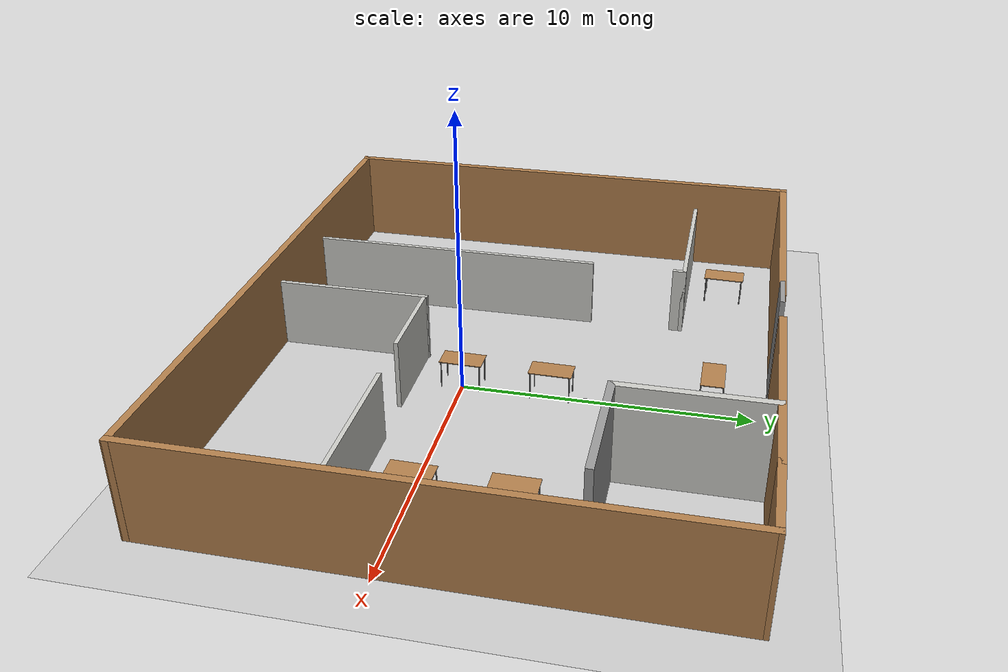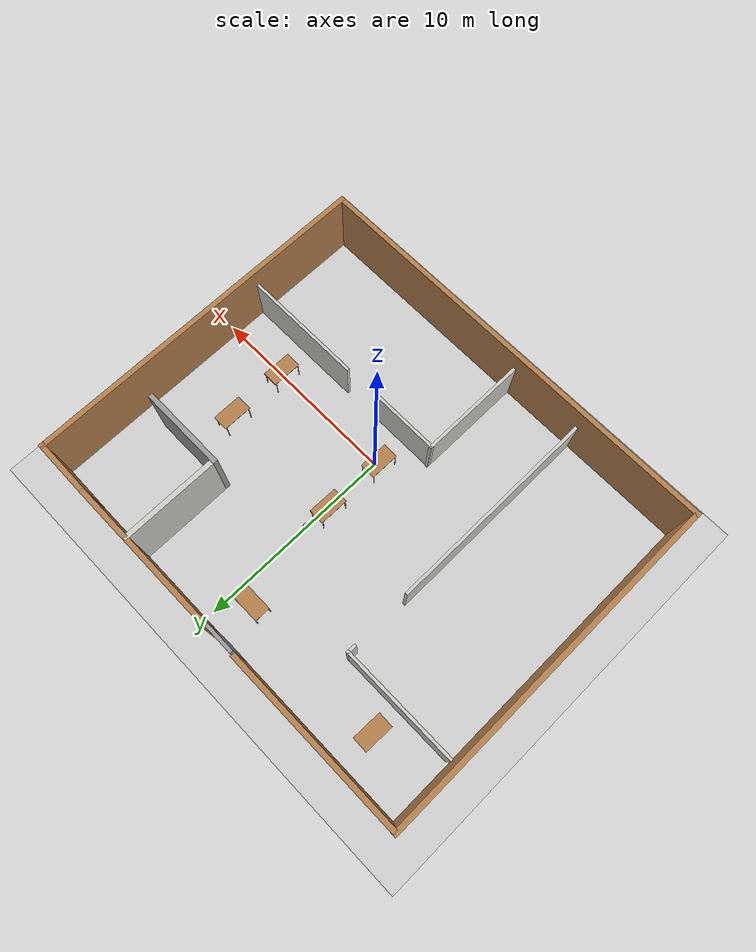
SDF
<sdf version="1.6">
 <world name="default">
  <light name="sun" type="directional">
   <pose>0 0 10 0 -0 0</pose>
   <diffuse>0.8 0.8 0.8 1</diffuse>
   <specular>0.2 0.2 0.2 1</specular>
   <attenuation>
    <range>1000</range>
    <constant>0.9</constant>
    <linear>0.01</linear>
    <quadratic>0.001</quadratic>
   </attenuation>
   <direction>-0.5 0.1 -0.9</direction>
  </light>
  <model name="ground_plane">
   <static>1</static>
   <link name="link">
    <collision name="collision">
     <geometry><plane><normal>0 0 1</normal><size>100 100</size></plane></geometry>
     <surface>
      <contact><collide_bitmask>65535</collide_bitmask></contact>
      <friction><ode><mu>100</mu><mu2>50</mu2></ode></friction>
     </surface>
    </collision>
    <visual name="visual">
     <cast_shadows>0</cast_shadows>
     <geometry><plane><normal>0 0 1</normal><size>100 100</size></plane></geometry>
     <material>
      <script><uri>file://media/materials/scripts/gazebo.material</uri><name>Gazebo/Grey</name></script>
     </material>
    </visual>
   </link>
  </model>
  <gravity>0 0 -9.8</gravity>
  <magnetic_field>6e-06 2.3e-05 -4.2e-05</magnetic_field>
  <atmosphere type="adiabatic"/>
  <physics name="default_physics" default="0" type="ode">
   <max_step_size>0.001</max_step_size>
   <real_time_factor>1</real_time_factor>
   <real_time_update_rate>1000</real_time_update_rate>
  </physics>
  <scene><ambient>0.4 0.4 0.4 1</ambient><background>0.7 0.7 0.7 1</background><shadows>1</shadows></scene>
  <audio><device>default</device></audio>
  <spherical_coordinates>
   <surface_model>EARTH_WGS84</surface_model>
   <latitude_deg>0</latitude_deg>
   <longitude_deg>0</longitude_deg>
   <elevation>0</elevation>
   <heading_deg>0</heading_deg>
  </spherical_coordinates>
  <model name="Building">
   <pose>-1.05841 1.60982 0 0 -0 0</pose>
   <link name="Door_0">
    <collision name="Door_0_Collision">
     <geometry><box><size>1.5 0.17 4</size></box></geometry>
     <pose>0 0 2 0 -0 0</pose>
    </collision>
    <visual name="Door_0_Visual">
     <pose>0 0 2 0 -0 0</pose>
     <geometry><box><size>1.5 0.17 4</size></box></geometry>
     <material>
      <script><uri>file://media/materials/scripts/gazebo.material</uri><name>Gazebo/Grey</name></script>
     </material>
    </visual>
    <pose>-0.815483 8.87818 0 0 -0 0</pose>
   </link>
   <link name="Wall_1">
    <collision name="Wall_1_Collision">
     <geometry><box><size>9.25 0.25 3.5</size></box></geometry>
     <pose>0 0 1.75 0 -0 0</pose>
    </collision>
    <visual name="Wall_1_Visual">
     <pose>0 0 1.75 0 -0 0</pose>
     <geometry><box><size>9.25 0.25 3.5</size></box></geometry>
     <material>
      <script><uri>file://media/materials/scripts/gazebo.material</uri><name>Gazebo/Wood</name></script>
      <ambient>1 1 1 1</ambient>
     </material>
     <meta><layer>0</layer></meta>
    </visual>
    <pose>-6.14568 8.92929 0 0 -0 0</pose>
   </link>
   <link name="Wall_13">
    <collision name="Wall_13_Collision">
     <geometry><box><size>0.15 0.15 2.5</size></box></geometry>
     <pose>0 0 1.25 0 -0 0</pose>
    </collision>
    <visual name="Wall_13_Visual">
     <pose>0 0 1.25 0 -0 0</pose>
     <geometry><box><size>0.15 0.15 2.5</size></box></geometry>
     <material>
      <script><uri>file://media/materials/scripts/gazebo.material</uri><name>Gazebo/Grey</name></script>
      <ambient>1 1 1 1</ambient>
     </material>
     <meta><layer>0</layer></meta>
    </visual>
    <pose>-10.7159 8.91724 0 0 -0 0</pose>
   </link>
   <link name="Wall_14">
    <collision name="Wall_14_Collision">
     <geometry><box><size>0.15 0.15 2.5</size></box></geometry>
     <pose>0 0 1.25 0 -0 0</pose>
    </collision>
    <visual name="Wall_14_Visual">
     <pose>0 0 1.25 0 -0 0</pose>
     <geometry><box><size>0.15 0.15 2.5</size></box></geometry>
     <material>
      <script><uri>file://media/materials/scripts/gazebo.material</uri><name>Gazebo/Grey</name></script>
      <ambient>1 1 1 1</ambient>
     </material>
     <meta><layer>0</layer></meta>
    </visual>
    <pose>-10.7159 8.91724 0 0 -0 0</pose>
   </link>
   <link name="Wall_17">
    <collision name="Wall_17_Collision">
     <geometry><box><size>5.10048 0.25 3.5</size></box></geometry>
     <pose>0 0 1.75 0 -0 0</pose>
    </collision>
    <visual name="Wall_17_Visual">
     <pose>0 0 1.75 0 -0 0</pose>
     <geometry><box><size>5.10048 0.25 3.5</size></box></geometry>
     <material>
      <script><uri>file://media/materials/scripts/gazebo.material</uri><name>Gazebo/CeilingTiled</name></script>
      <ambient>0 0 0 1</ambient>
     </material>
     <meta><layer>0</layer></meta>
    </visual>
    <pose>5.1471 6.47424 0 0 -0 -1.5708</pose>
   </link>
   <link name="Wall_18">
    <collision name="Wall_18_Collision">
     <geometry><box><size>4.35047 0.25 3.5</size></box></geometry>
     <pose>0 0 1.75 0 -0 0</pose>
    </collision>
    <visual name="Wall_18_Visual">
     <pose>0 0 1.75 0 -0 0</pose>
     <geometry><box><size>4.35047 0.25 3.5</size></box></geometry>
     <material>
      <script><uri>file://media/materials/scripts/gazebo.material</uri><name>Gazebo/Grey</name></script>
      <ambient>0 0 0 1</ambient>
     </material>
     <meta><layer>0</layer></meta>
    </visual>
    <pose>7.1971 4.04924 0 0 -0 0</pose>
   </link>
   <link name="Wall_3">
    <collision name="Wall_3_Collision">
     <geometry><box><size>8.09972 0.25 3.5</size></box></geometry>
     <pose>0 0 1.75 0 -0 0</pose>
    </collision>
    <visual name="Wall_3_Visual">
     <pose>0 0 1.75 0 -0 0</pose>
     <geometry><box><size>8.09972 0.25 3.5</size></box></geometry>
     <material>
      <script><uri>file://media/materials/scripts/gazebo.material</uri><name>Gazebo/Wood</name></script>
      <ambient>1 1 1 1</ambient>
     </material>
     <meta><layer>0</layer></meta>
    </visual>
    <pose>4.0241 8.94424 0 0 -0 0</pose>
   </link>
   <link name="Wall_4">
    <collision name="Wall_4_Collision">
     <geometry><box><size>3.10115 0.25 3.5</size></box></geometry>
     <pose>0 0 1.75 0 -0 0</pose>
    </collision>
    <visual name="Wall_4_Visual">
     <pose>0 0 1.75 0 -0 0</pose>
     <geometry><box><size>3.10115 0.25 3.5</size></box></geometry>
     <material>
      <script><uri>file://media/materials/scripts/gazebo.material</uri><name>Gazebo/Wood</name></script>
      <ambient>1 1 1 1</ambient>
     </material>
     <meta><layer>0</layer></meta>
    </visual>
    <pose>9.3741 8.92424 0 0 -0 -0.014034</pose>
   </link>
   <link name="Wall_5">
    <collision name="Wall_5_Collision">
     <geometry><box><size>18.1004 0.25 3.5</size></box></geometry>
     <pose>0 0 1.75 0 -0 0</pose>
    </collision>
    <visual name="Wall_5_Visual">
     <pose>0 0 1.75 0 -0 0</pose>
     <geometry><box><size>18.1004 0.25 3.5</size></box></geometry>
     <material>
      <script><uri>file://media/materials/scripts/gazebo.material</uri><name>Gazebo/Wood</name></script>
      <ambient>1 1 1 1</ambient>
     </material>
     <meta><layer>0</layer></meta>
    </visual>
    <pose>10.7991 -0.020758 0 0 -0 -1.5708</pose>
   </link>
   <link name="Wall_6">
    <collision name="Wall_6_Collision">
     <geometry><box><size>21.8503 0.25 3.5</size></box></geometry>
     <pose>0 0 1.75 0 -0 0</pose>
    </collision>
    <visual name="Wall_6_Visual">
     <pose>0 0 1.75 0 -0 0</pose>
     <geometry><box><size>21.8503 0.25 3.5</size></box></geometry>
     <material>
      <script><uri>file://media/materials/scripts/gazebo.material</uri><name>Gazebo/Wood</name></script>
      <ambient>1 1 1 1</ambient>
     </material>
     <meta><layer>0</layer></meta>
    </visual>
    <pose>-0.000902 -8.92576 0 0 -0 3.13974</pose>
   </link>
   <link name="Wall_7">
    <collision name="Wall_7_Collision">
     <geometry><box><size>18.1 0.25 3.5</size></box></geometry>
     <pose>0 0 1.75 0 -0 0</pose>
    </collision>
    <visual name="Wall_7_Visual">
     <pose>0 0 1.75 0 -0 0</pose>
     <geometry><box><size>18.1 0.25 3.5</size></box></geometry>
     <material>
      <script><uri>file://media/materials/scripts/gazebo.material</uri><name>Gazebo/Wood</name></script>
      <ambient>1 1 1 1</ambient>
     </material>
     <meta><layer>0</layer></meta>
    </visual>
    <pose>-10.8009 0.019242 0 0 -0 1.5708</pose>
   </link>
   <link name="Window_0">
    <collision name="Window_0_Collision">
     <geometry><box><size>0.8 0.17 0.8</size></box></geometry>
     <pose>0 0 0.4 0 -0 0</pose>
    </collision>
    <visual name="Window_0_Visual">
     <pose>0 0 0.4 0 -0 0</pose>
     <geometry><box><size>0.8 0.17 0.8</size></box></geometry>
     <material>
      <script><uri>file://media/materials/scripts/gazebo.material</uri><name>Gazebo/Grey</name></script>
     </material>
    </visual>
    <pose>8.40754 8.94648 0.5 0 -0 0</pose>
   </link>
   <static>1</static>
  </model>
  <model name="BuildingAdd">
   <pose>-0.92237 -0.11893 0 0 -0 0</pose>
   <link name="Wall_0">
    <collision name="Wall_0_Collision">
     <geometry><box><size>6.25 0.15 2.5</size></box></geometry>
     <pose>0 0 1.25 0 -0 0</pose>
    </collision>
    <visual name="Wall_0_Visual">
     <pose>0 0 1.25 0 -0 0</pose>
     <geometry><box><size>6.25 0.15 2.5</size></box></geometry>
     <material>
      <script><uri>file://media/materials/scripts/gazebo.material</uri><name>Gazebo/CeilingTiled</name></script>
      <ambient>0.533333 0.541176 0.521569 1</ambient>
     </material>
     <meta><layer>0</layer></meta>
    </visual>
    <pose>7.54237 -1.60107 0 0 -0 3.14159</pose>
   </link>
   <link name="Wall_10">
    <collision name="Wall_10_Collision">
     <geometry><box><size>6 0.15 2.5</size></box></geometry>
     <pose>0 0 1.25 0 -0 0</pose>
    </collision>
    <visual name="Wall_10_Visual">
     <pose>0 0 1.25 0 -0 0</pose>
     <geometry><box><size>6 0.15 2.5</size></box></geometry>
     <material>
      <script><uri>file://media/materials/scripts/gazebo.material</uri><name>Gazebo/CeilingTiled</name></script>
      <ambient>0.533333 0.541176 0.521569 1</ambient>
     </material>
     <meta><layer>0</layer></meta>
    </visual>
    <pose>-7.66737 7.21686 0 0 -0 3.14159</pose>
   </link>
   <link name="Wall_12">
    <collision name="Wall_12_Collision">
     <geometry><box><size>0.5 0.15 2.5</size></box></geometry>
     <pose>0 0 1.25 0 -0 0</pose>
    </collision>
    <visual name="Wall_12_Visual">
     <pose>0 0 1.25 0 -0 0</pose>
     <geometry><box><size>0.5 0.15 2.5</size></box></geometry>
     <material>
      <script><uri>file://media/materials/scripts/gazebo.material</uri><name>Gazebo/CeilingTiled</name></script>
      <ambient>0.533333 0.541176 0.521569 1</ambient>
     </material>
     <meta><layer>0</layer></meta>
    </visual>
    <pose>-4.74237 7.04186 0 0 -0 -1.5708</pose>
   </link>
   <link name="Wall_3">
    <collision name="Wall_3_Collision">
     <geometry><box><size>3.46053 0.15 2.5</size></box></geometry>
     <pose>0 0 1.25 0 -0 0</pose>
    </collision>
    <visual name="Wall_3_Visual">
     <pose>0 0 1.25 0 -0 0</pose>
     <geometry><box><size>3.46053 0.15 2.5</size></box></geometry>
     <material>
      <script><uri>file://media/materials/scripts/gazebo.material</uri><name>Gazebo/CeilingTiled</name></script>
      <ambient>0.533333 0.541176 0.521569 1</ambient>
     </material>
     <meta><layer>0</layer></meta>
    </visual>
    <pose>0.827039 -1.65732 0 0 -0 0</pose>
   </link>
   <link name="Wall_5">
    <collision name="Wall_5_Collision">
     <geometry><box><size>5.75 0.15 2.5</size></box></geometry>
     <pose>0 0 1.25 0 -0 0</pose>
    </collision>
    <visual name="Wall_5_Visual">
     <pose>0 0 1.25 0 -0 0</pose>
     <geometry><box><size>5.75 0.15 2.5</size></box></geometry>
     <material>
      <script><uri>file://media/materials/scripts/gazebo.material</uri><name>Gazebo/CeilingTiled</name></script>
      <ambient>0.533333 0.541176 0.521569 1</ambient>
     </material>
     <meta><layer>0</layer></meta>
    </visual>
    <pose>-0.827734 -4.41686 0 0 -0 -1.5708</pose>
   </link>
   <link name="Wall_7">
    <collision name="Wall_7_Collision">
     <geometry><box><size>10.75 0.15 2.5</size></box></geometry>
     <pose>0 0 1.25 0 -0 0</pose>
    </collision>
    <visual name="Wall_7_Visual">
     <pose>0 0 1.25 0 -0 0</pose>
     <geometry><box><size>10.75 0.15 2.5</size></box></geometry>
     <material>
      <script><uri>file://media/materials/scripts/gazebo.material</uri><name>Gazebo/CeilingTiled</name></script>
      <ambient>0.533333 0.541176 0.521569 1</ambient>
     </material>
     <meta><layer>0</layer></meta>
    </visual>
    <pose>-4.71035 -1.55701 0 0 -0 -1.5708</pose>
   </link>
   <static>1</static>
  </model>
  <model name="table">
   <static>1</static>
   <link name="link">
    <collision name="surface">
     <pose>0 0 1 0 -0 0</pose>
     <geometry><box><size>1.5 0.8 0.03</size></box></geometry>
     <surface><friction><ode><mu>0.6</mu><mu2>0.6</mu2></ode></friction></surface>
    </collision>
    <visual name="visual1">
     <pose>0 0 1 0 -0 0</pose>
     <geometry><box><size>1.5 0.8 0.03</size></box></geometry>
     <material>
      <script><uri>file://media/materials/scripts/gazebo.material</uri><name>Gazebo/Wood</name></script>
     </material>
    </visual>
    <collision name="front_left_leg">
     <pose>0.68 0.38 0.5 0 -0 0</pose>
     <geometry><cylinder><radius>0.02</radius><length>1</length></cylinder></geometry>
    </collision>
    <visual name="front_left_leg">
     <pose>0.68 0.38 0.5 0 -0 0</pose>
     <geometry><cylinder><radius>0.02</radius><length>1</length></cylinder></geometry>
     <material>
      <script><uri>file://media/materials/scripts/gazebo.material</uri><name>Gazebo/Grey</name></script>
     </material>
    </visual>
    <collision name="front_right_leg">
     <pose>0.68 -0.38 0.5 0 -0 0</pose>
     <geometry><cylinder><radius>0.02</radius><length>1</length></cylinder></geometry>
    </collision>
    <visual name="front_right_leg">
     <pose>0.68 -0.38 0.5 0 -0 0</pose>
     <geometry><cylinder><radius>0.02</radius><length>1</length></cylinder></geometry>
     <material>
      <script><uri>file://media/materials/scripts/gazebo.material</uri><name>Gazebo/Grey</name></script>
     </material>
    </visual>
    <collision name="back_right_leg">
     <pose>-0.68 -0.38 0.5 0 -0 0</pose>
     <geometry><cylinder><radius>0.02</radius><length>1</length></cylinder></geometry>
    </collision>
    <visual name="back_right_leg">
     <pose>-0.68 -0.38 0.5 0 -0 0</pose>
     <geometry><cylinder><radius>0.02</radius><length>1</length></cylinder></geometry>
     <material>
      <script><uri>file://media/materials/scripts/gazebo.material</uri><name>Gazebo/Grey</name></script>
     </material>
    </visual>
    <collision name="back_left_leg">
     <pose>-0.68 0.38 0.5 0 -0 0</pose>
     <geometry><cylinder><radius>0.02</radius><length>1</length></cylinder></geometry>
    </collision>
    <visual name="back_left_leg">
     <pose>-0.68 0.38 0.5 0 -0 0</pose>
     <geometry><cylinder><radius>0.02</radius><length>1</length></cylinder></geometry>
     <material>
      <script><uri>file://media/materials/scripts/gazebo.material</uri><name>Gazebo/Grey</name></script>
     </material>
    </visual>
   </link>
   <pose>-1.0384 8.54838 0 0 -0 0</pose>
  </model>
  <model name="table_clone">
   <static>1</static>
   <link name="link">
    <collision name="surface">
     <pose>0 0 1 0 -0 0</pose>
     <geometry><box><size>1.5 0.8 0.03</size></box></geometry>
     <surface><friction><ode><mu>0.6</mu><mu2>0.6</mu2></ode></friction></surface>
    </collision>
    <visual name="visual1">
     <pose>0 0 1 0 -0 0</pose>
     <geometry><box><size>1.5 0.8 0.03</size></box></geometry>
     <material>
      <script><uri>file://media/materials/scripts/gazebo.material</uri><name>Gazebo/Wood</name></script>
     </material>
    </visual>
    <collision name="front_left_leg">
     <pose>0.68 0.38 0.5 0 -0 0</pose>
     <geometry><cylinder><radius>0.02</radius><length>1</length></cylinder></geometry>
    </collision>
    <visual name="front_left_leg">
     <pose>0.68 0.38 0.5 0 -0 0</pose>
     <geometry><cylinder><radius>0.02</radius><length>1</length></cylinder></geometry>
     <material>
      <script><uri>file://media/materials/scripts/gazebo.material</uri><name>Gazebo/Grey</name></script>
     </material>
    </visual>
    <collision name="front_right_leg">
     <pose>0.68 -0.38 0.5 0 -0 0</pose>
     <geometry><cylinder><radius>0.02</radius><length>1</length></cylinder></geometry>
    </collision>
    <visual name="front_right_leg">
     <pose>0.68 -0.38 0.5 0 -0 0</pose>
     <geometry><cylinder><radius>0.02</radius><length>1</length></cylinder></geometry>
     <material>
      <script><uri>file://media/materials/scripts/gazebo.material</uri><name>Gazebo/Grey</name></script>
     </material>
    </visual>
    <collision name="back_right_leg">
     <pose>-0.68 -0.38 0.5 0 -0 0</pose>
     <geometry><cylinder><radius>0.02</radius><length>1</length></cylinder></geometry>
    </collision>
    <visual name="back_right_leg">
     <pose>-0.68 -0.38 0.5 0 -0 0</pose>
     <geometry><cylinder><radius>0.02</radius><length>1</length></cylinder></geometry>
     <material>
      <script><uri>file://media/materials/scripts/gazebo.material</uri><name>Gazebo/Grey</name></script>
     </material>
    </visual>
    <collision name="back_left_leg">
     <pose>-0.68 0.38 0.5 0 -0 0</pose>
     <geometry><cylinder><radius>0.02</radius><length>1</length></cylinder></geometry>
    </collision>
    <visual name="back_left_leg">
     <pose>-0.68 0.38 0.5 0 -0 0</pose>
     <geometry><cylinder><radius>0.02</radius><length>1</length></cylinder></geometry>
     <material>
      <script><uri>file://media/materials/scripts/gazebo.material</uri><name>Gazebo/Grey</name></script>
     </material>
    </visual>
   </link>
   <pose>-8.61704 8.5535 0 0 -0 1.5424</pose>
  </model>
  <model name="ball">
   <link name="link_0">
    <inertial>
     <mass>1</mass>
     <inertia><ixx>0.1</ixx><ixy>0</ixy><ixz>0</ixz><iyy>0.1</iyy><iyz>0</iyz><izz>0.1</izz></inertia>
    </inertial>
    <visual name="visual">
     <geometry><sphere><radius>0.1</radius></sphere></geometry>
     <material>
      <lighting>1</lighting>
      <script><uri>file://media/materials/scripts/gazebo.material</uri><name>Gazebo/Grey</name></script>
      <shader type="vertex"><normal_map>__default__</normal_map></shader>
      <ambient>1 1 1 1</ambient>
      <diffuse>1 1 1 1</diffuse>
      <specular>1 1 1 1</specular>
      <emissive>1 1 1 1</emissive>
     </material>
    </visual>
    <collision name="collision">
     <geometry><sphere><radius>0.1</radius></sphere></geometry>
     <surface>
      <friction>
       <ode><mu>1</mu><mu2>1</mu2><fdir1>0 0 0</fdir1><slip1>0</slip1><slip2>0</slip2></ode>
       <torsional>
        <coefficient>1</coefficient>
        <patch_radius>0</patch_radius>
        <surface_radius>0</surface_radius>
        <use_patch_radius>1</use_patch_radius>
        <ode><slip>0</slip></ode>
       </torsional>
      </friction>
      <bounce><restitution_coefficient>0</restitution_coefficient><threshold>1e+06</threshold></bounce>
      <contact>
       <collide_without_contact>0</collide_without_contact>
       <collide_without_contact_bitmask>1</collide_without_contact_bitmask>
       <collide_bitmask>1</collide_bitmask>
       <ode>
        <soft_cfm>0</soft_cfm>
        <soft_erp>0.2</soft_erp>
        <kp>1e+13</kp>
        <kd>1</kd>
        <max_vel>0.01</max_vel>
        <min_depth>0</min_depth>
       </ode>
       <bullet>
        <split_impulse>1</split_impulse>
        <split_impulse_penetration_threshold>-0.01</split_impulse_penetration_threshold>
        <soft_cfm>0</soft_cfm>
        <soft_erp>0.2</soft_erp>
        <kp>1e+13</kp>
        <kd>1</kd>
       </bullet>
      </contact>
     </surface>
    </collision>
   </link>
   <static>0</static>
   <pose>0.097454 4.36821 0.1 0 -0 0</pose>
  </model>
  <model name="table_clone_0">
   <static>1</static>
   <link name="link">
    <collision name="surface">
     <pose>0 0 1 0 -0 0</pose>
     <geometry><box><size>1.5 0.8 0.03</size></box></geometry>
     <surface><friction><ode><mu>0.6</mu><mu2>0.6</mu2></ode></friction></surface>
    </collision>
    <visual name="visual1">
     <pose>0 0 1 0 -0 0</pose>
     <geometry><box><size>1.5 0.8 0.03</size></box></geometry>
     <material>
      <script><uri>file://media/materials/scripts/gazebo.material</uri><name>Gazebo/Wood</name></script>
     </material>
    </visual>
    <collision name="front_left_leg">
     <pose>0.68 0.38 0.5 0 -0 0</pose>
     <geometry><cylinder><radius>0.02</radius><length>1</length></cylinder></geometry>
    </collision>
    <visual name="front_left_leg">
     <pose>0.68 0.38 0.5 0 -0 0</pose>
     <geometry><cylinder><radius>0.02</radius><length>1</length></cylinder></geometry>
     <material>
      <script><uri>file://media/materials/scripts/gazebo.material</uri><name>Gazebo/Grey</name></script>
     </material>
    </visual>
    <collision name="front_right_leg">
     <pose>0.68 -0.38 0.5 0 -0 0</pose>
     <geometry><cylinder><radius>0.02</radius><length>1</length></cylinder></geometry>
    </collision>
    <visual name="front_right_leg">
     <pose>0.68 -0.38 0.5 0 -0 0</pose>
     <geometry><cylinder><radius>0.02</radius><length>1</length></cylinder></geometry>
     <material>
      <script><uri>file://media/materials/scripts/gazebo.material</uri><name>Gazebo/Grey</name></script>
     </material>
    </visual>
    <collision name="back_right_leg">
     <pose>-0.68 -0.38 0.5 0 -0 0</pose>
     <geometry><cylinder><radius>0.02</radius><length>1</length></cylinder></geometry>
    </collision>
    <visual name="back_right_leg">
     <pose>-0.68 -0.38 0.5 0 -0 0</pose>
     <geometry><cylinder><radius>0.02</radius><length>1</length></cylinder></geometry>
     <material>
      <script><uri>file://media/materials/scripts/gazebo.material</uri><name>Gazebo/Grey</name></script>
     </material>
    </visual>
    <collision name="back_left_leg">
     <pose>-0.68 0.38 0.5 0 -0 0</pose>
     <geometry><cylinder><radius>0.02</radius><length>1</length></cylinder></geometry>
    </collision>
    <visual name="back_left_leg">
     <pose>-0.68 0.38 0.5 0 -0 0</pose>
     <geometry><cylinder><radius>0.02</radius><length>1</length></cylinder></geometry>
     <material>
      <script><uri>file://media/materials/scripts/gazebo.material</uri><name>Gazebo/Grey</name></script>
     </material>
    </visual>
   </link>
   <pose>-0.2566 -0.018522 0 0 0 -1.58773</pose>
  </model>
  <model name="table_clone_1">
   <static>1</static>
   <link name="link">
    <collision name="surface">
     <pose>0 0 1 0 -0 0</pose>
     <geometry><box><size>1.5 0.8 0.03</size></box></geometry>
     <surface><friction><ode><mu>0.6</mu><mu2>0.6</mu2></ode></friction></surface>
    </collision>
    <visual name="visual1">
     <pose>0 0 1 0 -0 0</pose>
     <geometry><box><size>1.5 0.8 0.03</size></box></geometry>
     <material>
      <script><uri>file://media/materials/scripts/gazebo.material</uri><name>Gazebo/Wood</name></script>
     </material>
    </visual>
    <collision name="front_left_leg">
     <pose>0.68 0.38 0.5 0 -0 0</pose>
     <geometry><cylinder><radius>0.02</radius><length>1</length></cylinder></geometry>
    </collision>
    <visual name="front_left_leg">
     <pose>0.68 0.38 0.5 0 -0 0</pose>
     <geometry><cylinder><radius>0.02</radius><length>1</length></cylinder></geometry>
     <material>
      <script><uri>file://media/materials/scripts/gazebo.material</uri><name>Gazebo/Grey</name></script>
     </material>
    </visual>
    <collision name="front_right_leg">
     <pose>0.68 -0.38 0.5 0 -0 0</pose>
     <geometry><cylinder><radius>0.02</radius><length>1</length></cylinder></geometry>
    </collision>
    <visual name="front_right_leg">
     <pose>0.68 -0.38 0.5 0 -0 0</pose>
     <geometry><cylinder><radius>0.02</radius><length>1</length></cylinder></geometry>
     <material>
      <script><uri>file://media/materials/scripts/gazebo.material</uri><name>Gazebo/Grey</name></script>
     </material>
    </visual>
    <collision name="back_right_leg">
     <pose>-0.68 -0.38 0.5 0 -0 0</pose>
     <geometry><cylinder><radius>0.02</radius><length>1</length></cylinder></geometry>
    </collision>
    <visual name="back_right_leg">
     <pose>-0.68 -0.38 0.5 0 -0 0</pose>
     <geometry><cylinder><radius>0.02</radius><length>1</length></cylinder></geometry>
     <material>
      <script><uri>file://media/materials/scripts/gazebo.material</uri><name>Gazebo/Grey</name></script>
     </material>
    </visual>
    <collision name="back_left_leg">
     <pose>-0.68 0.38 0.5 0 -0 0</pose>
     <geometry><cylinder><radius>0.02</radius><length>1</length></cylinder></geometry>
    </collision>
    <visual name="back_left_leg">
     <pose>-0.68 0.38 0.5 0 -0 0</pose>
     <geometry><cylinder><radius>0.02</radius><length>1</length></cylinder></geometry>
     <material>
      <script><uri>file://media/materials/scripts/gazebo.material</uri><name>Gazebo/Grey</name></script>
     </material>
    </visual>
   </link>
   <pose>-0.20121 3.12945 0 0 0 -1.58556</pose>
  </model>
  <model name="table_clone_2">
   <static>1</static>
   <link name="link">
    <collision name="surface">
     <pose>0 0 1 0 -0 0</pose>
     <geometry><box><size>1.5 0.8 0.03</size></box></geometry>
     <surface><friction><ode><mu>0.6</mu><mu2>0.6</mu2></ode></friction></surface>
    </collision>
    <visual name="visual1">
     <pose>0 0 1 0 -0 0</pose>
     <geometry><box><size>1.5 0.8 0.03</size></box></geometry>
     <material>
      <script><uri>file://media/materials/scripts/gazebo.material</uri><name>Gazebo/Wood</name></script>
     </material>
    </visual>
    <collision name="front_left_leg">
     <pose>0.68 0.38 0.5 0 -0 0</pose>
     <geometry><cylinder><radius>0.02</radius><length>1</length></cylinder></geometry>
    </collision>
    <visual name="front_left_leg">
     <pose>0.68 0.38 0.5 0 -0 0</pose>
     <geometry><cylinder><radius>0.02</radius><length>1</length></cylinder></geometry>
     <material>
      <script><uri>file://media/materials/scripts/gazebo.material</uri><name>Gazebo/Grey</name></script>
     </material>
    </visual>
    <collision name="front_right_leg">
     <pose>0.68 -0.38 0.5 0 -0 0</pose>
     <geometry><cylinder><radius>0.02</radius><length>1</length></cylinder></geometry>
    </collision>
    <visual name="front_right_leg">
     <pose>0.68 -0.38 0.5 0 -0 0</pose>
     <geometry><cylinder><radius>0.02</radius><length>1</length></cylinder></geometry>
     <material>
      <script><uri>file://media/materials/scripts/gazebo.material</uri><name>Gazebo/Grey</name></script>
     </material>
    </visual>
    <collision name="back_right_leg">
     <pose>-0.68 -0.38 0.5 0 -0 0</pose>
     <geometry><cylinder><radius>0.02</radius><length>1</length></cylinder></geometry>
    </collision>
    <visual name="back_right_leg">
     <pose>-0.68 -0.38 0.5 0 -0 0</pose>
     <geometry><cylinder><radius>0.02</radius><length>1</length></cylinder></geometry>
     <material>
      <script><uri>file://media/materials/scripts/gazebo.material</uri><name>Gazebo/Grey</name></script>
     </material>
    </visual>
    <collision name="back_left_leg">
     <pose>-0.68 0.38 0.5 0 -0 0</pose>
     <geometry><cylinder><radius>0.02</radius><length>1</length></cylinder></geometry>
    </collision>
    <visual name="back_left_leg">
     <pose>-0.68 0.38 0.5 0 -0 0</pose>
     <geometry><cylinder><radius>0.02</radius><length>1</length></cylinder></geometry>
     <material>
      <script><uri>file://media/materials/scripts/gazebo.material</uri><name>Gazebo/Grey</name></script>
     </material>
    </visual>
   </link>
   <pose>6.24699 0.062088 0 0 0 -1.58383</pose>
  </model>
  <model name="table_clone_3">
   <static>1</static>
   <link name="link">
    <collision name="surface">
     <pose>0 0 1 0 -0 0</pose>
     <geometry><box><size>1.5 0.8 0.03</size></box></geometry>
     <surface><friction><ode><mu>0.6</mu><mu2>0.6</mu2></ode></friction></surface>
    </collision>
    <visual name="visual1">
     <pose>0 0 1 0 -0 0</pose>
     <geometry><box><size>1.5 0.8 0.03</size></box></geometry>
     <material>
      <script><uri>file://media/materials/scripts/gazebo.material</uri><name>Gazebo/Wood</name></script>
     </material>
    </visual>
    <collision name="front_left_leg">
     <pose>0.68 0.38 0.5 0 -0 0</pose>
     <geometry><cylinder><radius>0.02</radius><length>1</length></cylinder></geometry>
    </collision>
    <visual name="front_left_leg">
     <pose>0.68 0.38 0.5 0 -0 0</pose>
     <geometry><cylinder><radius>0.02</radius><length>1</length></cylinder></geometry>
     <material>
      <script><uri>file://media/materials/scripts/gazebo.material</uri><name>Gazebo/Grey</name></script>
     </material>
    </visual>
    <collision name="front_right_leg">
     <pose>0.68 -0.38 0.5 0 -0 0</pose>
     <geometry><cylinder><radius>0.02</radius><length>1</length></cylinder></geometry>
    </collision>
    <visual name="front_right_leg">
     <pose>0.68 -0.38 0.5 0 -0 0</pose>
     <geometry><cylinder><radius>0.02</radius><length>1</length></cylinder></geometry>
     <material>
      <script><uri>file://media/materials/scripts/gazebo.material</uri><name>Gazebo/Grey</name></script>
     </material>
    </visual>
    <collision name="back_right_leg">
     <pose>-0.68 -0.38 0.5 0 -0 0</pose>
     <geometry><cylinder><radius>0.02</radius><length>1</length></cylinder></geometry>
    </collision>
    <visual name="back_right_leg">
     <pose>-0.68 -0.38 0.5 0 -0 0</pose>
     <geometry><cylinder><radius>0.02</radius><length>1</length></cylinder></geometry>
     <material>
      <script><uri>file://media/materials/scripts/gazebo.material</uri><name>Gazebo/Grey</name></script>
     </material>
    </visual>
    <collision name="back_left_leg">
     <pose>-0.68 0.38 0.5 0 -0 0</pose>
     <geometry><cylinder><radius>0.02</radius><length>1</length></cylinder></geometry>
    </collision>
    <visual name="back_left_leg">
     <pose>-0.68 0.38 0.5 0 -0 0</pose>
     <geometry><cylinder><radius>0.02</radius><length>1</length></cylinder></geometry>
     <material>
      <script><uri>file://media/materials/scripts/gazebo.material</uri><name>Gazebo/Grey</name></script>
     </material>
    </visual>
   </link>
   <pose>6.21715 3.21824 0 0 0 -1.57027</pose>
  </model>
  <plugin name="collision_map_creator" filename="libcollision_map_creator.so"/>
 </world>
</sdf>
